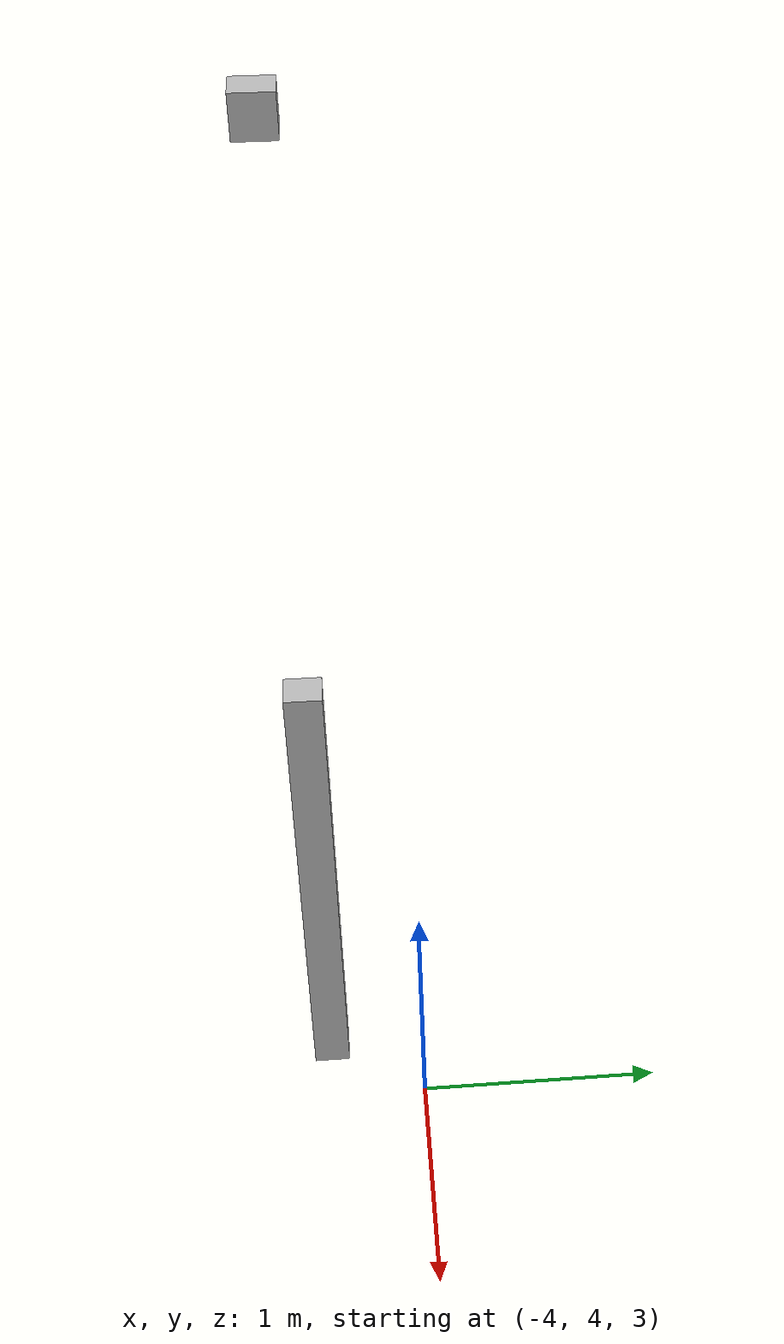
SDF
<sdf version="1.7">
 <world name="default">
  <model name="orthogonal_747_2.000.15_TS">
   <static>1</static>
   <link name="z_link_3_4_1">
    <inertial>
     <mass>1</mass>
     <inertia>
      <ixx>0.166667</ixx>
      <ixy>0</ixy>
      <ixz>0</ixz>
      <iyy>0.166667</iyy>
      <iyz>0</iyz>
      <izz>0.166667</izz>
     </inertia>
    </inertial>
    <pose>2.15 8.6 6.45 0 -0 0</pose>
    <visual name="visual_0">
     <laser_retro>3333</laser_retro>
     <geometry><box><size>0.15 1e-06 2</size></box></geometry>
     <material>
      <script><name>Gazebo/Grey</name><uri>file://media/materials/scripts/gazebo.material</uri></script>
      <shader type="pixel"><normal_map>__default__</normal_map></shader>
      <ambient>0.678 0.498 0.659 1</ambient>
      <diffuse>0.7 0.7 0.7 1</diffuse>
      <specular>0.01 0.01 0.01 1</specular>
      <emissive>0 0 0 1</emissive>
     </material>
     <pose>0 -0.075 0 0 -0 0</pose>
     <transparency>1</transparency>
    </visual>
    <visual name="visual_1">
     <laser_retro>3334</laser_retro>
     <geometry><box><size>0.15 1e-06 2</size></box></geometry>
     <material>
      <script><name>Gazebo/Grey</name><uri>file://media/materials/scripts/gazebo.material</uri></script>
      <shader type="pixel"><normal_map>__default__</normal_map></shader>
      <ambient>0.447 0.624 0.812 1</ambient>
      <diffuse>0.7 0.7 0.7 1</diffuse>
      <specular>0.01 0.01 0.01 1</specular>
      <emissive>0 0 0 1</emissive>
     </material>
     <pose>0 0.075 0 0 -0 0</pose>
     <transparency>1</transparency>
    </visual>
    <visual name="visual_2">
     <laser_retro>3335</laser_retro>
     <geometry><box><size>0.15 0.15 1e-06</size></box></geometry>
     <material>
      <script><name>Gazebo/Grey</name><uri>file://media/materials/scripts/gazebo.material</uri></script>
      <shader type="pixel"><normal_map>__default__</normal_map></shader>
      <ambient>0.988 0.686 0.243 1</ambient>
      <diffuse>0.7 0.7 0.7 1</diffuse>
      <specular>0.01 0.01 0.01 1</specular>
      <emissive>0 0 0 1</emissive>
     </material>
     <pose>0 0 -1 0 -0 0</pose>
     <transparency>1</transparency>
    </visual>
    <visual name="visual_3">
     <laser_retro>3336</laser_retro>
     <geometry><box><size>1e-06 0.15 2</size></box></geometry>
     <material>
      <script><name>Gazebo/Grey</name><uri>file://media/materials/scripts/gazebo.material</uri></script>
      <shader type="pixel"><normal_map>__default__</normal_map></shader>
      <ambient>0.988 0.914 0.31 1</ambient>
      <diffuse>0.7 0.7 0.7 1</diffuse>
      <specular>0.01 0.01 0.01 1</specular>
      <emissive>0 0 0 1</emissive>
     </material>
     <pose>0.075 0 0 0 -0 0</pose>
     <transparency>1</transparency>
    </visual>
    <visual name="visual_4">
     <laser_retro>3337</laser_retro>
     <geometry><box><size>0.15 0.15 1e-06</size></box></geometry>
     <material>
      <script><name>Gazebo/Grey</name><uri>file://media/materials/scripts/gazebo.material</uri></script>
      <shader type="pixel"><normal_map>__default__</normal_map></shader>
      <ambient>0.937 0.161 0.161 1</ambient>
      <diffuse>0.7 0.7 0.7 1</diffuse>
      <specular>0.01 0.01 0.01 1</specular>
      <emissive>0 0 0 1</emissive>
     </material>
     <pose>0 0 1 0 -0 0</pose>
     <transparency>1</transparency>
    </visual>
    <visual name="visual_5">
     <laser_retro>3338</laser_retro>
     <geometry><box><size>1e-06 0.15 2</size></box></geometry>
     <material>
      <script><name>Gazebo/Grey</name><uri>file://media/materials/scripts/gazebo.material</uri></script>
      <shader type="pixel"><normal_map>__default__</normal_map></shader>
      <ambient>0.541 0.886 0.204 1</ambient>
      <diffuse>0.7 0.7 0.7 1</diffuse>
      <specular>0.01 0.01 0.01 1</specular>
      <emissive>0 0 0 1</emissive>
     </material>
     <pose>-0.075 0 0 0 -0 0</pose>
     <transparency>1</transparency>
    </visual>
    <visual name="visual_texture">
     <geometry><box><size>0.149985 0.149985 1.9998</size></box></geometry>
     <material>
      <script>
       <uri>model://BASE_MODELS/simple_block_v2_textured/materials/scripts</uri>
       <uri>model://BASE_MODELS/simple_block_v2_textured/materials/textures</uri>
       <name>metal</name>
      </script>
     </material>
     <laser_retro>3339</laser_retro>
    </visual>
    <collision name="collision">
     <geometry><box><size>0.15 0.15 2</size></box></geometry>
     <surface>
      <friction>
       <ode><mu>1</mu><mu2>1</mu2><fdir1>0 0 0</fdir1><slip1>0</slip1><slip2>0</slip2></ode>
       <torsional>
        <coefficient>1</coefficient>
        <patch_radius>0</patch_radius>
        <surface_radius>0</surface_radius>
        <use_patch_radius>1</use_patch_radius>
        <ode><slip>0</slip></ode>
       </torsional>
      </friction>
      <bounce><restitution_coefficient>0</restitution_coefficient><threshold>1e+06</threshold></bounce>
      <contact>
       <collide_without_contact>0</collide_without_contact>
       <collide_without_contact_bitmask>1</collide_without_contact_bitmask>
       <collide_bitmask>1</collide_bitmask>
       <ode>
        <soft_cfm>0</soft_cfm>
        <soft_erp>0.2</soft_erp>
        <kp>1e+13</kp>
        <kd>1</kd>
        <max_vel>0.01</max_vel>
        <min_depth>0</min_depth>
       </ode>
       <bullet>
        <split_impulse>1</split_impulse>
        <split_impulse_penetration_threshold>-0.01</split_impulse_penetration_threshold>
        <soft_cfm>0</soft_cfm>
        <soft_erp>0.2</soft_erp>
        <kp>1e+13</kp>
        <kd>1</kd>
       </bullet>
      </contact>
     </surface>
    </collision>
   </link>
   <link name="u_link_4_4_1">
    <inertial>
     <mass>1</mass>
     <inertia>
      <ixx>0.166667</ixx>
      <ixy>0</ixy>
      <ixz>0</ixz>
      <iyy>0.166667</iyy>
      <iyz>0</iyz>
      <izz>0.166667</izz>
     </inertia>
    </inertial>
    <pose>2.15 8.6 9.675 0 -0 0</pose>
    <visual name="visual_0">
     <laser_retro>4229</laser_retro>
     <geometry><box><size>0.15 1e-06 0.15</size></box></geometry>
     <material>
      <script><name>Gazebo/Grey</name><uri>file://media/materials/scripts/gazebo.material</uri></script>
      <shader type="pixel"><normal_map>__default__</normal_map></shader>
      <ambient>0.678 0.498 0.659 1</ambient>
      <diffuse>0.7 0.7 0.7 1</diffuse>
      <specular>0.01 0.01 0.01 1</specular>
      <emissive>0 0 0 1</emissive>
     </material>
     <pose>0 -0.075 0 0 -0 0</pose>
     <transparency>1</transparency>
    </visual>
    <visual name="visual_1">
     <laser_retro>4230</laser_retro>
     <geometry><box><size>0.15 1e-06 0.15</size></box></geometry>
     <material>
      <script><name>Gazebo/Grey</name><uri>file://media/materials/scripts/gazebo.material</uri></script>
      <shader type="pixel"><normal_map>__default__</normal_map></shader>
      <ambient>0.447 0.624 0.812 1</ambient>
      <diffuse>0.7 0.7 0.7 1</diffuse>
      <specular>0.01 0.01 0.01 1</specular>
      <emissive>0 0 0 1</emissive>
     </material>
     <pose>0 0.075 0 0 -0 0</pose>
     <transparency>1</transparency>
    </visual>
    <visual name="visual_2">
     <laser_retro>4231</laser_retro>
     <geometry><box><size>0.15 0.15 1e-06</size></box></geometry>
     <material>
      <script><name>Gazebo/Grey</name><uri>file://media/materials/scripts/gazebo.material</uri></script>
      <shader type="pixel"><normal_map>__default__</normal_map></shader>
      <ambient>0.988 0.686 0.243 1</ambient>
      <diffuse>0.7 0.7 0.7 1</diffuse>
      <specular>0.01 0.01 0.01 1</specular>
      <emissive>0 0 0 1</emissive>
     </material>
     <pose>0 0 -0.075 0 -0 0</pose>
     <transparency>1</transparency>
    </visual>
    <visual name="visual_3">
     <laser_retro>4232</laser_retro>
     <geometry><box><size>1e-06 0.15 0.15</size></box></geometry>
     <material>
      <script><name>Gazebo/Grey</name><uri>file://media/materials/scripts/gazebo.material</uri></script>
      <shader type="pixel"><normal_map>__default__</normal_map></shader>
      <ambient>0.988 0.914 0.31 1</ambient>
      <diffuse>0.7 0.7 0.7 1</diffuse>
      <specular>0.01 0.01 0.01 1</specular>
      <emissive>0 0 0 1</emissive>
     </material>
     <pose>0.075 0 0 0 -0 0</pose>
     <transparency>1</transparency>
    </visual>
    <visual name="visual_4">
     <laser_retro>4233</laser_retro>
     <geometry><box><size>0.15 0.15 1e-06</size></box></geometry>
     <material>
      <script><name>Gazebo/Grey</name><uri>file://media/materials/scripts/gazebo.material</uri></script>
      <shader type="pixel"><normal_map>__default__</normal_map></shader>
      <ambient>0.937 0.161 0.161 1</ambient>
      <diffuse>0.7 0.7 0.7 1</diffuse>
      <specular>0.01 0.01 0.01 1</specular>
      <emissive>0 0 0 1</emissive>
     </material>
     <pose>0 0 0.075 0 -0 0</pose>
     <transparency>1</transparency>
    </visual>
    <visual name="visual_5">
     <laser_retro>4234</laser_retro>
     <geometry><box><size>1e-06 0.15 0.15</size></box></geometry>
     <material>
      <script><name>Gazebo/Grey</name><uri>file://media/materials/scripts/gazebo.material</uri></script>
      <shader type="pixel"><normal_map>__default__</normal_map></shader>
      <ambient>0.541 0.886 0.204 1</ambient>
      <diffuse>0.7 0.7 0.7 1</diffuse>
      <specular>0.01 0.01 0.01 1</specular>
      <emissive>0 0 0 1</emissive>
     </material>
     <pose>-0.075 0 0 0 -0 0</pose>
     <transparency>1</transparency>
    </visual>
    <visual name="visual_texture">
     <geometry><box><size>0.149985 0.149985 0.149985</size></box></geometry>
     <material>
      <script>
       <uri>model://BASE_MODELS/simple_block_v2_textured/materials/scripts</uri>
       <uri>model://BASE_MODELS/simple_block_v2_textured/materials/textures</uri>
       <name>metal</name>
      </script>
     </material>
     <laser_retro>4235</laser_retro>
    </visual>
    <collision name="collision">
     <geometry><box><size>0.15 0.15 0.15</size></box></geometry>
     <surface>
      <friction>
       <ode><mu>1</mu><mu2>1</mu2><fdir1>0 0 0</fdir1><slip1>0</slip1><slip2>0</slip2></ode>
       <torsional>
        <coefficient>1</coefficient>
        <patch_radius>0</patch_radius>
        <surface_radius>0</surface_radius>
        <use_patch_radius>1</use_patch_radius>
        <ode><slip>0</slip></ode>
       </torsional>
      </friction>
      <bounce><restitution_coefficient>0</restitution_coefficient><threshold>1e+06</threshold></bounce>
      <contact>
       <collide_without_contact>0</collide_without_contact>
       <collide_without_contact_bitmask>1</collide_without_contact_bitmask>
       <collide_bitmask>1</collide_bitmask>
       <ode>
        <soft_cfm>0</soft_cfm>
        <soft_erp>0.2</soft_erp>
        <kp>1e+13</kp>
        <kd>1</kd>
        <max_vel>0.01</max_vel>
        <min_depth>0</min_depth>
       </ode>
       <bullet>
        <split_impulse>1</split_impulse>
        <split_impulse_penetration_threshold>-0.01</split_impulse_penetration_threshold>
        <soft_cfm>0</soft_cfm>
        <soft_erp>0.2</soft_erp>
        <kp>1e+13</kp>
        <kd>1</kd>
       </bullet>
      </contact>
     </surface>
    </collision>
   </link>
   <pose>-6.47624 -5 -2.5 0 -0 0</pose>
  </model>
 </world>
</sdf>
